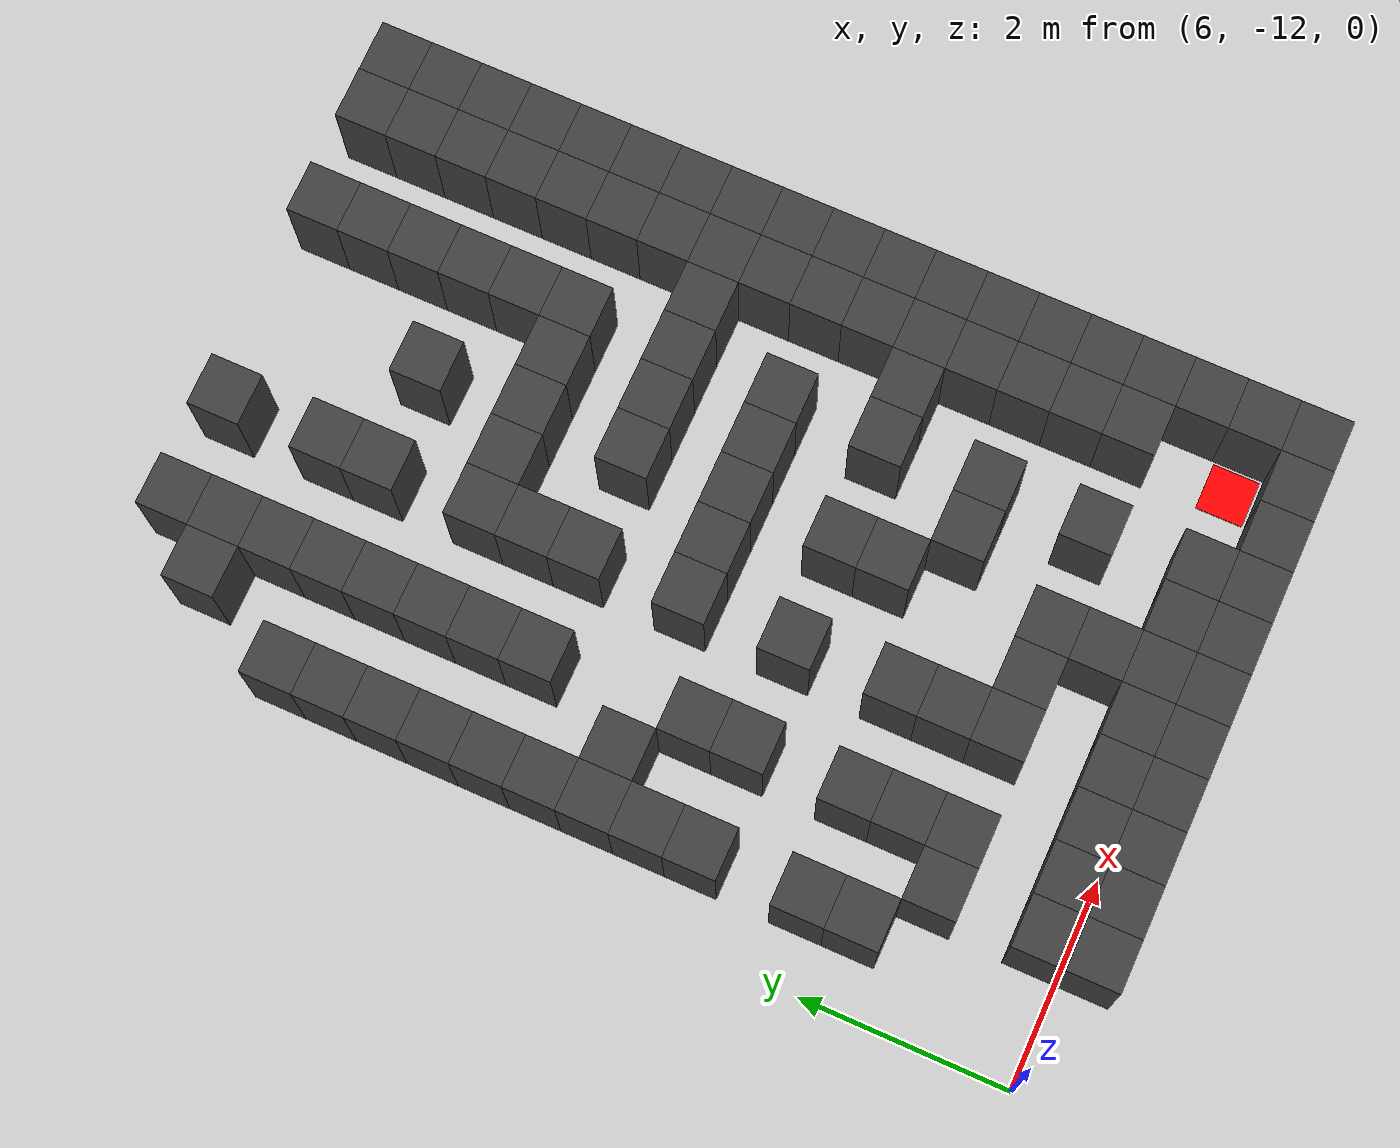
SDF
<sdf version="1.7">
 <world name="map_15168">
  <model name="ground_plane">
   <static>true</static>
   <link name="link">
    <collision name="collision">
     <geometry><plane><normal>0 0 1</normal><size>200 200</size></plane></geometry>
    </collision>
    <visual name="visual">
     <geometry><plane><normal>0 0 1</normal><size>200 200</size></plane></geometry>
     <material><ambient>0.8 0.8 0.8 1</ambient><diffuse>0.8 0.8 0.8 1</diffuse></material>
    </visual>
   </link>
  </model>
  <model name="maze_environment">
   <static>true</static>
   <link name="wall_743">
    <pose>7.750 -3.250 0.500 0 0 0</pose>
    <collision name="col"><geometry><box><size>0.5 0.5 1.0</size></box></geometry></collision>
    <visual name="vis">
     <geometry><box><size>0.5 0.5 1.0</size></box></geometry>
     <material><ambient>0.15 0.15 0.15 1</ambient><diffuse>0.25 0.25 0.25 1</diffuse></material>
    </visual>
   </link>
   <link name="wall_744">
    <pose>8.750 -3.250 0.500 0 0 0</pose>
    <collision name="col"><geometry><box><size>0.5 0.5 1.0</size></box></geometry></collision>
    <visual name="vis">
     <geometry><box><size>0.5 0.5 1.0</size></box></geometry>
     <material><ambient>0.15 0.15 0.15 1</ambient><diffuse>0.25 0.25 0.25 1</diffuse></material>
    </visual>
   </link>
   <link name="wall_745">
    <pose>10.750 -3.250 0.500 0 0 0</pose>
    <collision name="col"><geometry><box><size>0.5 0.5 1.0</size></box></geometry></collision>
    <visual name="vis">
     <geometry><box><size>0.5 0.5 1.0</size></box></geometry>
     <material><ambient>0.15 0.15 0.15 1</ambient><diffuse>0.25 0.25 0.25 1</diffuse></material>
    </visual>
   </link>
   <link name="wall_746">
    <pose>11.750 -3.250 0.500 0 0 0</pose>
    <collision name="col"><geometry><box><size>0.5 0.5 1.0</size></box></geometry></collision>
    <visual name="vis">
     <geometry><box><size>0.5 0.5 1.0</size></box></geometry>
     <material><ambient>0.15 0.15 0.15 1</ambient><diffuse>0.25 0.25 0.25 1</diffuse></material>
    </visual>
   </link>
   <link name="wall_747">
    <pose>12.250 -3.250 0.500 0 0 0</pose>
    <collision name="col"><geometry><box><size>0.5 0.5 1.0</size></box></geometry></collision>
    <visual name="vis">
     <geometry><box><size>0.5 0.5 1.0</size></box></geometry>
     <material><ambient>0.15 0.15 0.15 1</ambient><diffuse>0.25 0.25 0.25 1</diffuse></material>
    </visual>
   </link>
   <link name="wall_767">
    <pose>7.250 -3.750 0.500 0 0 0</pose>
    <collision name="col"><geometry><box><size>0.5 0.5 1.0</size></box></geometry></collision>
    <visual name="vis">
     <geometry><box><size>0.5 0.5 1.0</size></box></geometry>
     <material><ambient>0.15 0.15 0.15 1</ambient><diffuse>0.25 0.25 0.25 1</diffuse></material>
    </visual>
   </link>
   <link name="wall_768">
    <pose>7.750 -3.750 0.500 0 0 0</pose>
    <collision name="col"><geometry><box><size>0.5 0.5 1.0</size></box></geometry></collision>
    <visual name="vis">
     <geometry><box><size>0.5 0.5 1.0</size></box></geometry>
     <material><ambient>0.15 0.15 0.15 1</ambient><diffuse>0.25 0.25 0.25 1</diffuse></material>
    </visual>
   </link>
   <link name="wall_769">
    <pose>10.750 -3.750 0.500 0 0 0</pose>
    <collision name="col"><geometry><box><size>0.5 0.5 1.0</size></box></geometry></collision>
    <visual name="vis">
     <geometry><box><size>0.5 0.5 1.0</size></box></geometry>
     <material><ambient>0.15 0.15 0.15 1</ambient><diffuse>0.25 0.25 0.25 1</diffuse></material>
    </visual>
   </link>
   <link name="wall_770">
    <pose>11.750 -3.750 0.500 0 0 0</pose>
    <collision name="col"><geometry><box><size>0.5 0.5 1.0</size></box></geometry></collision>
    <visual name="vis">
     <geometry><box><size>0.5 0.5 1.0</size></box></geometry>
     <material><ambient>0.15 0.15 0.15 1</ambient><diffuse>0.25 0.25 0.25 1</diffuse></material>
    </visual>
   </link>
   <link name="wall_771">
    <pose>12.250 -3.750 0.500 0 0 0</pose>
    <collision name="col"><geometry><box><size>0.5 0.5 1.0</size></box></geometry></collision>
    <visual name="vis">
     <geometry><box><size>0.5 0.5 1.0</size></box></geometry>
     <material><ambient>0.15 0.15 0.15 1</ambient><diffuse>0.25 0.25 0.25 1</diffuse></material>
    </visual>
   </link>
   <link name="wall_780">
    <pose>7.750 -4.250 0.500 0 0 0</pose>
    <collision name="col"><geometry><box><size>0.5 0.5 1.0</size></box></geometry></collision>
    <visual name="vis">
     <geometry><box><size>0.5 0.5 1.0</size></box></geometry>
     <material><ambient>0.15 0.15 0.15 1</ambient><diffuse>0.25 0.25 0.25 1</diffuse></material>
    </visual>
   </link>
   <link name="wall_781">
    <pose>8.750 -4.250 0.500 0 0 0</pose>
    <collision name="col"><geometry><box><size>0.5 0.5 1.0</size></box></geometry></collision>
    <visual name="vis">
     <geometry><box><size>0.5 0.5 1.0</size></box></geometry>
     <material><ambient>0.15 0.15 0.15 1</ambient><diffuse>0.25 0.25 0.25 1</diffuse></material>
    </visual>
   </link>
   <link name="wall_782">
    <pose>10.750 -4.250 0.500 0 0 0</pose>
    <collision name="col"><geometry><box><size>0.5 0.5 1.0</size></box></geometry></collision>
    <visual name="vis">
     <geometry><box><size>0.5 0.5 1.0</size></box></geometry>
     <material><ambient>0.15 0.15 0.15 1</ambient><diffuse>0.25 0.25 0.25 1</diffuse></material>
    </visual>
   </link>
   <link name="wall_783">
    <pose>11.750 -4.250 0.500 0 0 0</pose>
    <collision name="col"><geometry><box><size>0.5 0.5 1.0</size></box></geometry></collision>
    <visual name="vis">
     <geometry><box><size>0.5 0.5 1.0</size></box></geometry>
     <material><ambient>0.15 0.15 0.15 1</ambient><diffuse>0.25 0.25 0.25 1</diffuse></material>
    </visual>
   </link>
   <link name="wall_784">
    <pose>12.250 -4.250 0.500 0 0 0</pose>
    <collision name="col"><geometry><box><size>0.5 0.5 1.0</size></box></geometry></collision>
    <visual name="vis">
     <geometry><box><size>0.5 0.5 1.0</size></box></geometry>
     <material><ambient>0.15 0.15 0.15 1</ambient><diffuse>0.25 0.25 0.25 1</diffuse></material>
    </visual>
   </link>
   <link name="wall_809">
    <pose>6.750 -4.750 0.500 0 0 0</pose>
    <collision name="col"><geometry><box><size>0.5 0.5 1.0</size></box></geometry></collision>
    <visual name="vis">
     <geometry><box><size>0.5 0.5 1.0</size></box></geometry>
     <material><ambient>0.15 0.15 0.15 1</ambient><diffuse>0.25 0.25 0.25 1</diffuse></material>
    </visual>
   </link>
   <link name="wall_810">
    <pose>7.750 -4.750 0.500 0 0 0</pose>
    <collision name="col"><geometry><box><size>0.5 0.5 1.0</size></box></geometry></collision>
    <visual name="vis">
     <geometry><box><size>0.5 0.5 1.0</size></box></geometry>
     <material><ambient>0.15 0.15 0.15 1</ambient><diffuse>0.25 0.25 0.25 1</diffuse></material>
    </visual>
   </link>
   <link name="wall_811">
    <pose>8.750 -4.750 0.500 0 0 0</pose>
    <collision name="col"><geometry><box><size>0.5 0.5 1.0</size></box></geometry></collision>
    <visual name="vis">
     <geometry><box><size>0.5 0.5 1.0</size></box></geometry>
     <material><ambient>0.15 0.15 0.15 1</ambient><diffuse>0.25 0.25 0.25 1</diffuse></material>
    </visual>
   </link>
   <link name="wall_812">
    <pose>9.750 -4.750 0.500 0 0 0</pose>
    <collision name="col"><geometry><box><size>0.5 0.5 1.0</size></box></geometry></collision>
    <visual name="vis">
     <geometry><box><size>0.5 0.5 1.0</size></box></geometry>
     <material><ambient>0.15 0.15 0.15 1</ambient><diffuse>0.25 0.25 0.25 1</diffuse></material>
    </visual>
   </link>
   <link name="wall_813">
    <pose>10.750 -4.750 0.500 0 0 0</pose>
    <collision name="col"><geometry><box><size>0.5 0.5 1.0</size></box></geometry></collision>
    <visual name="vis">
     <geometry><box><size>0.5 0.5 1.0</size></box></geometry>
     <material><ambient>0.15 0.15 0.15 1</ambient><diffuse>0.25 0.25 0.25 1</diffuse></material>
    </visual>
   </link>
   <link name="wall_814">
    <pose>11.750 -4.750 0.500 0 0 0</pose>
    <collision name="col"><geometry><box><size>0.5 0.5 1.0</size></box></geometry></collision>
    <visual name="vis">
     <geometry><box><size>0.5 0.5 1.0</size></box></geometry>
     <material><ambient>0.15 0.15 0.15 1</ambient><diffuse>0.25 0.25 0.25 1</diffuse></material>
    </visual>
   </link>
   <link name="wall_815">
    <pose>12.250 -4.750 0.500 0 0 0</pose>
    <collision name="col"><geometry><box><size>0.5 0.5 1.0</size></box></geometry></collision>
    <visual name="vis">
     <geometry><box><size>0.5 0.5 1.0</size></box></geometry>
     <material><ambient>0.15 0.15 0.15 1</ambient><diffuse>0.25 0.25 0.25 1</diffuse></material>
    </visual>
   </link>
   <link name="wall_824">
    <pose>6.750 -5.250 0.500 0 0 0</pose>
    <collision name="col"><geometry><box><size>0.5 0.5 1.0</size></box></geometry></collision>
    <visual name="vis">
     <geometry><box><size>0.5 0.5 1.0</size></box></geometry>
     <material><ambient>0.15 0.15 0.15 1</ambient><diffuse>0.25 0.25 0.25 1</diffuse></material>
    </visual>
   </link>
   <link name="wall_825">
    <pose>7.750 -5.250 0.500 0 0 0</pose>
    <collision name="col"><geometry><box><size>0.5 0.5 1.0</size></box></geometry></collision>
    <visual name="vis">
     <geometry><box><size>0.5 0.5 1.0</size></box></geometry>
     <material><ambient>0.15 0.15 0.15 1</ambient><diffuse>0.25 0.25 0.25 1</diffuse></material>
    </visual>
   </link>
   <link name="wall_826">
    <pose>10.750 -5.250 0.500 0 0 0</pose>
    <collision name="col"><geometry><box><size>0.5 0.5 1.0</size></box></geometry></collision>
    <visual name="vis">
     <geometry><box><size>0.5 0.5 1.0</size></box></geometry>
     <material><ambient>0.15 0.15 0.15 1</ambient><diffuse>0.25 0.25 0.25 1</diffuse></material>
    </visual>
   </link>
   <link name="wall_827">
    <pose>11.750 -5.250 0.500 0 0 0</pose>
    <collision name="col"><geometry><box><size>0.5 0.5 1.0</size></box></geometry></collision>
    <visual name="vis">
     <geometry><box><size>0.5 0.5 1.0</size></box></geometry>
     <material><ambient>0.15 0.15 0.15 1</ambient><diffuse>0.25 0.25 0.25 1</diffuse></material>
    </visual>
   </link>
   <link name="wall_828">
    <pose>12.250 -5.250 0.500 0 0 0</pose>
    <collision name="col"><geometry><box><size>0.5 0.5 1.0</size></box></geometry></collision>
    <visual name="vis">
     <geometry><box><size>0.5 0.5 1.0</size></box></geometry>
     <material><ambient>0.15 0.15 0.15 1</ambient><diffuse>0.25 0.25 0.25 1</diffuse></material>
    </visual>
   </link>
   <link name="wall_855">
    <pose>6.750 -5.750 0.500 0 0 0</pose>
    <collision name="col"><geometry><box><size>0.5 0.5 1.0</size></box></geometry></collision>
    <visual name="vis">
     <geometry><box><size>0.5 0.5 1.0</size></box></geometry>
     <material><ambient>0.15 0.15 0.15 1</ambient><diffuse>0.25 0.25 0.25 1</diffuse></material>
    </visual>
   </link>
   <link name="wall_856">
    <pose>7.750 -5.750 0.500 0 0 0</pose>
    <collision name="col"><geometry><box><size>0.5 0.5 1.0</size></box></geometry></collision>
    <visual name="vis">
     <geometry><box><size>0.5 0.5 1.0</size></box></geometry>
     <material><ambient>0.15 0.15 0.15 1</ambient><diffuse>0.25 0.25 0.25 1</diffuse></material>
    </visual>
   </link>
   <link name="wall_857">
    <pose>8.750 -5.750 0.500 0 0 0</pose>
    <collision name="col"><geometry><box><size>0.5 0.5 1.0</size></box></geometry></collision>
    <visual name="vis">
     <geometry><box><size>0.5 0.5 1.0</size></box></geometry>
     <material><ambient>0.15 0.15 0.15 1</ambient><diffuse>0.25 0.25 0.25 1</diffuse></material>
    </visual>
   </link>
   <link name="wall_858">
    <pose>9.250 -5.750 0.500 0 0 0</pose>
    <collision name="col"><geometry><box><size>0.5 0.5 1.0</size></box></geometry></collision>
    <visual name="vis">
     <geometry><box><size>0.5 0.5 1.0</size></box></geometry>
     <material><ambient>0.15 0.15 0.15 1</ambient><diffuse>0.25 0.25 0.25 1</diffuse></material>
    </visual>
   </link>
   <link name="wall_859">
    <pose>9.750 -5.750 0.500 0 0 0</pose>
    <collision name="col"><geometry><box><size>0.5 0.5 1.0</size></box></geometry></collision>
    <visual name="vis">
     <geometry><box><size>0.5 0.5 1.0</size></box></geometry>
     <material><ambient>0.15 0.15 0.15 1</ambient><diffuse>0.25 0.25 0.25 1</diffuse></material>
    </visual>
   </link>
   <link name="wall_860">
    <pose>10.250 -5.750 0.500 0 0 0</pose>
    <collision name="col"><geometry><box><size>0.5 0.5 1.0</size></box></geometry></collision>
    <visual name="vis">
     <geometry><box><size>0.5 0.5 1.0</size></box></geometry>
     <material><ambient>0.15 0.15 0.15 1</ambient><diffuse>0.25 0.25 0.25 1</diffuse></material>
    </visual>
   </link>
   <link name="wall_861">
    <pose>10.750 -5.750 0.500 0 0 0</pose>
    <collision name="col"><geometry><box><size>0.5 0.5 1.0</size></box></geometry></collision>
    <visual name="vis">
     <geometry><box><size>0.5 0.5 1.0</size></box></geometry>
     <material><ambient>0.15 0.15 0.15 1</ambient><diffuse>0.25 0.25 0.25 1</diffuse></material>
    </visual>
   </link>
   <link name="wall_862">
    <pose>11.750 -5.750 0.500 0 0 0</pose>
    <collision name="col"><geometry><box><size>0.5 0.5 1.0</size></box></geometry></collision>
    <visual name="vis">
     <geometry><box><size>0.5 0.5 1.0</size></box></geometry>
     <material><ambient>0.15 0.15 0.15 1</ambient><diffuse>0.25 0.25 0.25 1</diffuse></material>
    </visual>
   </link>
   <link name="wall_863">
    <pose>12.250 -5.750 0.500 0 0 0</pose>
    <collision name="col"><geometry><box><size>0.5 0.5 1.0</size></box></geometry></collision>
    <visual name="vis">
     <geometry><box><size>0.5 0.5 1.0</size></box></geometry>
     <material><ambient>0.15 0.15 0.15 1</ambient><diffuse>0.25 0.25 0.25 1</diffuse></material>
    </visual>
   </link>
   <link name="wall_869">
    <pose>6.750 -6.250 0.500 0 0 0</pose>
    <collision name="col"><geometry><box><size>0.5 0.5 1.0</size></box></geometry></collision>
    <visual name="vis">
     <geometry><box><size>0.5 0.5 1.0</size></box></geometry>
     <material><ambient>0.15 0.15 0.15 1</ambient><diffuse>0.25 0.25 0.25 1</diffuse></material>
    </visual>
   </link>
   <link name="wall_870">
    <pose>7.750 -6.250 0.500 0 0 0</pose>
    <collision name="col"><geometry><box><size>0.5 0.5 1.0</size></box></geometry></collision>
    <visual name="vis">
     <geometry><box><size>0.5 0.5 1.0</size></box></geometry>
     <material><ambient>0.15 0.15 0.15 1</ambient><diffuse>0.25 0.25 0.25 1</diffuse></material>
    </visual>
   </link>
   <link name="wall_871">
    <pose>8.750 -6.250 0.500 0 0 0</pose>
    <collision name="col"><geometry><box><size>0.5 0.5 1.0</size></box></geometry></collision>
    <visual name="vis">
     <geometry><box><size>0.5 0.5 1.0</size></box></geometry>
     <material><ambient>0.15 0.15 0.15 1</ambient><diffuse>0.25 0.25 0.25 1</diffuse></material>
    </visual>
   </link>
   <link name="wall_872">
    <pose>11.750 -6.250 0.500 0 0 0</pose>
    <collision name="col"><geometry><box><size>0.5 0.5 1.0</size></box></geometry></collision>
    <visual name="vis">
     <geometry><box><size>0.5 0.5 1.0</size></box></geometry>
     <material><ambient>0.15 0.15 0.15 1</ambient><diffuse>0.25 0.25 0.25 1</diffuse></material>
    </visual>
   </link>
   <link name="wall_873">
    <pose>12.250 -6.250 0.500 0 0 0</pose>
    <collision name="col"><geometry><box><size>0.5 0.5 1.0</size></box></geometry></collision>
    <visual name="vis">
     <geometry><box><size>0.5 0.5 1.0</size></box></geometry>
     <material><ambient>0.15 0.15 0.15 1</ambient><diffuse>0.25 0.25 0.25 1</diffuse></material>
    </visual>
   </link>
   <link name="wall_903">
    <pose>6.750 -6.750 0.500 0 0 0</pose>
    <collision name="col"><geometry><box><size>0.5 0.5 1.0</size></box></geometry></collision>
    <visual name="vis">
     <geometry><box><size>0.5 0.5 1.0</size></box></geometry>
     <material><ambient>0.15 0.15 0.15 1</ambient><diffuse>0.25 0.25 0.25 1</diffuse></material>
    </visual>
   </link>
   <link name="wall_904">
    <pose>7.750 -6.750 0.500 0 0 0</pose>
    <collision name="col"><geometry><box><size>0.5 0.5 1.0</size></box></geometry></collision>
    <visual name="vis">
     <geometry><box><size>0.5 0.5 1.0</size></box></geometry>
     <material><ambient>0.15 0.15 0.15 1</ambient><diffuse>0.25 0.25 0.25 1</diffuse></material>
    </visual>
   </link>
   <link name="wall_905">
    <pose>8.750 -6.750 0.500 0 0 0</pose>
    <collision name="col"><geometry><box><size>0.5 0.5 1.0</size></box></geometry></collision>
    <visual name="vis">
     <geometry><box><size>0.5 0.5 1.0</size></box></geometry>
     <material><ambient>0.15 0.15 0.15 1</ambient><diffuse>0.25 0.25 0.25 1</diffuse></material>
    </visual>
   </link>
   <link name="wall_906">
    <pose>9.750 -6.750 0.500 0 0 0</pose>
    <collision name="col"><geometry><box><size>0.5 0.5 1.0</size></box></geometry></collision>
    <visual name="vis">
     <geometry><box><size>0.5 0.5 1.0</size></box></geometry>
     <material><ambient>0.15 0.15 0.15 1</ambient><diffuse>0.25 0.25 0.25 1</diffuse></material>
    </visual>
   </link>
   <link name="wall_907">
    <pose>10.250 -6.750 0.500 0 0 0</pose>
    <collision name="col"><geometry><box><size>0.5 0.5 1.0</size></box></geometry></collision>
    <visual name="vis">
     <geometry><box><size>0.5 0.5 1.0</size></box></geometry>
     <material><ambient>0.15 0.15 0.15 1</ambient><diffuse>0.25 0.25 0.25 1</diffuse></material>
    </visual>
   </link>
   <link name="wall_908">
    <pose>10.750 -6.750 0.500 0 0 0</pose>
    <collision name="col"><geometry><box><size>0.5 0.5 1.0</size></box></geometry></collision>
    <visual name="vis">
     <geometry><box><size>0.5 0.5 1.0</size></box></geometry>
     <material><ambient>0.15 0.15 0.15 1</ambient><diffuse>0.25 0.25 0.25 1</diffuse></material>
    </visual>
   </link>
   <link name="wall_909">
    <pose>11.250 -6.750 0.500 0 0 0</pose>
    <collision name="col"><geometry><box><size>0.5 0.5 1.0</size></box></geometry></collision>
    <visual name="vis">
     <geometry><box><size>0.5 0.5 1.0</size></box></geometry>
     <material><ambient>0.15 0.15 0.15 1</ambient><diffuse>0.25 0.25 0.25 1</diffuse></material>
    </visual>
   </link>
   <link name="wall_910">
    <pose>11.750 -6.750 0.500 0 0 0</pose>
    <collision name="col"><geometry><box><size>0.5 0.5 1.0</size></box></geometry></collision>
    <visual name="vis">
     <geometry><box><size>0.5 0.5 1.0</size></box></geometry>
     <material><ambient>0.15 0.15 0.15 1</ambient><diffuse>0.25 0.25 0.25 1</diffuse></material>
    </visual>
   </link>
   <link name="wall_911">
    <pose>12.250 -6.750 0.500 0 0 0</pose>
    <collision name="col"><geometry><box><size>0.5 0.5 1.0</size></box></geometry></collision>
    <visual name="vis">
     <geometry><box><size>0.5 0.5 1.0</size></box></geometry>
     <material><ambient>0.15 0.15 0.15 1</ambient><diffuse>0.25 0.25 0.25 1</diffuse></material>
    </visual>
   </link>
   <link name="wall_920">
    <pose>6.750 -7.250 0.500 0 0 0</pose>
    <collision name="col"><geometry><box><size>0.5 0.5 1.0</size></box></geometry></collision>
    <visual name="vis">
     <geometry><box><size>0.5 0.5 1.0</size></box></geometry>
     <material><ambient>0.15 0.15 0.15 1</ambient><diffuse>0.25 0.25 0.25 1</diffuse></material>
    </visual>
   </link>
   <link name="wall_921">
    <pose>11.750 -7.250 0.500 0 0 0</pose>
    <collision name="col"><geometry><box><size>0.5 0.5 1.0</size></box></geometry></collision>
    <visual name="vis">
     <geometry><box><size>0.5 0.5 1.0</size></box></geometry>
     <material><ambient>0.15 0.15 0.15 1</ambient><diffuse>0.25 0.25 0.25 1</diffuse></material>
    </visual>
   </link>
   <link name="wall_922">
    <pose>12.250 -7.250 0.500 0 0 0</pose>
    <collision name="col"><geometry><box><size>0.5 0.5 1.0</size></box></geometry></collision>
    <visual name="vis">
     <geometry><box><size>0.5 0.5 1.0</size></box></geometry>
     <material><ambient>0.15 0.15 0.15 1</ambient><diffuse>0.25 0.25 0.25 1</diffuse></material>
    </visual>
   </link>
   <link name="wall_946">
    <pose>6.750 -7.750 0.500 0 0 0</pose>
    <collision name="col"><geometry><box><size>0.5 0.5 1.0</size></box></geometry></collision>
    <visual name="vis">
     <geometry><box><size>0.5 0.5 1.0</size></box></geometry>
     <material><ambient>0.15 0.15 0.15 1</ambient><diffuse>0.25 0.25 0.25 1</diffuse></material>
    </visual>
   </link>
   <link name="wall_947">
    <pose>7.250 -7.750 0.500 0 0 0</pose>
    <collision name="col"><geometry><box><size>0.5 0.5 1.0</size></box></geometry></collision>
    <visual name="vis">
     <geometry><box><size>0.5 0.5 1.0</size></box></geometry>
     <material><ambient>0.15 0.15 0.15 1</ambient><diffuse>0.25 0.25 0.25 1</diffuse></material>
    </visual>
   </link>
   <link name="wall_948">
    <pose>8.750 -7.750 0.500 0 0 0</pose>
    <collision name="col"><geometry><box><size>0.5 0.5 1.0</size></box></geometry></collision>
    <visual name="vis">
     <geometry><box><size>0.5 0.5 1.0</size></box></geometry>
     <material><ambient>0.15 0.15 0.15 1</ambient><diffuse>0.25 0.25 0.25 1</diffuse></material>
    </visual>
   </link>
   <link name="wall_949">
    <pose>9.250 -7.750 0.500 0 0 0</pose>
    <collision name="col"><geometry><box><size>0.5 0.5 1.0</size></box></geometry></collision>
    <visual name="vis">
     <geometry><box><size>0.5 0.5 1.0</size></box></geometry>
     <material><ambient>0.15 0.15 0.15 1</ambient><diffuse>0.25 0.25 0.25 1</diffuse></material>
    </visual>
   </link>
   <link name="wall_950">
    <pose>9.750 -7.750 0.500 0 0 0</pose>
    <collision name="col"><geometry><box><size>0.5 0.5 1.0</size></box></geometry></collision>
    <visual name="vis">
     <geometry><box><size>0.5 0.5 1.0</size></box></geometry>
     <material><ambient>0.15 0.15 0.15 1</ambient><diffuse>0.25 0.25 0.25 1</diffuse></material>
    </visual>
   </link>
   <link name="wall_951">
    <pose>10.250 -7.750 0.500 0 0 0</pose>
    <collision name="col"><geometry><box><size>0.5 0.5 1.0</size></box></geometry></collision>
    <visual name="vis">
     <geometry><box><size>0.5 0.5 1.0</size></box></geometry>
     <material><ambient>0.15 0.15 0.15 1</ambient><diffuse>0.25 0.25 0.25 1</diffuse></material>
    </visual>
   </link>
   <link name="wall_952">
    <pose>10.750 -7.750 0.500 0 0 0</pose>
    <collision name="col"><geometry><box><size>0.5 0.5 1.0</size></box></geometry></collision>
    <visual name="vis">
     <geometry><box><size>0.5 0.5 1.0</size></box></geometry>
     <material><ambient>0.15 0.15 0.15 1</ambient><diffuse>0.25 0.25 0.25 1</diffuse></material>
    </visual>
   </link>
   <link name="wall_953">
    <pose>11.750 -7.750 0.500 0 0 0</pose>
    <collision name="col"><geometry><box><size>0.5 0.5 1.0</size></box></geometry></collision>
    <visual name="vis">
     <geometry><box><size>0.5 0.5 1.0</size></box></geometry>
     <material><ambient>0.15 0.15 0.15 1</ambient><diffuse>0.25 0.25 0.25 1</diffuse></material>
    </visual>
   </link>
   <link name="wall_954">
    <pose>12.250 -7.750 0.500 0 0 0</pose>
    <collision name="col"><geometry><box><size>0.5 0.5 1.0</size></box></geometry></collision>
    <visual name="vis">
     <geometry><box><size>0.5 0.5 1.0</size></box></geometry>
     <material><ambient>0.15 0.15 0.15 1</ambient><diffuse>0.25 0.25 0.25 1</diffuse></material>
    </visual>
   </link>
   <link name="wall_964">
    <pose>6.750 -8.250 0.500 0 0 0</pose>
    <collision name="col"><geometry><box><size>0.5 0.5 1.0</size></box></geometry></collision>
    <visual name="vis">
     <geometry><box><size>0.5 0.5 1.0</size></box></geometry>
     <material><ambient>0.15 0.15 0.15 1</ambient><diffuse>0.25 0.25 0.25 1</diffuse></material>
    </visual>
   </link>
   <link name="wall_965">
    <pose>7.750 -8.250 0.500 0 0 0</pose>
    <collision name="col"><geometry><box><size>0.5 0.5 1.0</size></box></geometry></collision>
    <visual name="vis">
     <geometry><box><size>0.5 0.5 1.0</size></box></geometry>
     <material><ambient>0.15 0.15 0.15 1</ambient><diffuse>0.25 0.25 0.25 1</diffuse></material>
    </visual>
   </link>
   <link name="wall_966">
    <pose>11.750 -8.250 0.500 0 0 0</pose>
    <collision name="col"><geometry><box><size>0.5 0.5 1.0</size></box></geometry></collision>
    <visual name="vis">
     <geometry><box><size>0.5 0.5 1.0</size></box></geometry>
     <material><ambient>0.15 0.15 0.15 1</ambient><diffuse>0.25 0.25 0.25 1</diffuse></material>
    </visual>
   </link>
   <link name="wall_967">
    <pose>12.250 -8.250 0.500 0 0 0</pose>
    <collision name="col"><geometry><box><size>0.5 0.5 1.0</size></box></geometry></collision>
    <visual name="vis">
     <geometry><box><size>0.5 0.5 1.0</size></box></geometry>
     <material><ambient>0.15 0.15 0.15 1</ambient><diffuse>0.25 0.25 0.25 1</diffuse></material>
    </visual>
   </link>
   <link name="wall_996">
    <pose>6.750 -8.750 0.500 0 0 0</pose>
    <collision name="col"><geometry><box><size>0.5 0.5 1.0</size></box></geometry></collision>
    <visual name="vis">
     <geometry><box><size>0.5 0.5 1.0</size></box></geometry>
     <material><ambient>0.15 0.15 0.15 1</ambient><diffuse>0.25 0.25 0.25 1</diffuse></material>
    </visual>
   </link>
   <link name="wall_997">
    <pose>7.750 -8.750 0.500 0 0 0</pose>
    <collision name="col"><geometry><box><size>0.5 0.5 1.0</size></box></geometry></collision>
    <visual name="vis">
     <geometry><box><size>0.5 0.5 1.0</size></box></geometry>
     <material><ambient>0.15 0.15 0.15 1</ambient><diffuse>0.25 0.25 0.25 1</diffuse></material>
    </visual>
   </link>
   <link name="wall_998">
    <pose>8.750 -8.750 0.500 0 0 0</pose>
    <collision name="col"><geometry><box><size>0.5 0.5 1.0</size></box></geometry></collision>
    <visual name="vis">
     <geometry><box><size>0.5 0.5 1.0</size></box></geometry>
     <material><ambient>0.15 0.15 0.15 1</ambient><diffuse>0.25 0.25 0.25 1</diffuse></material>
    </visual>
   </link>
   <link name="wall_999">
    <pose>9.750 -8.750 0.500 0 0 0</pose>
    <collision name="col"><geometry><box><size>0.5 0.5 1.0</size></box></geometry></collision>
    <visual name="vis">
     <geometry><box><size>0.5 0.5 1.0</size></box></geometry>
     <material><ambient>0.15 0.15 0.15 1</ambient><diffuse>0.25 0.25 0.25 1</diffuse></material>
    </visual>
   </link>
   <link name="wall_1000">
    <pose>10.750 -8.750 0.500 0 0 0</pose>
    <collision name="col"><geometry><box><size>0.5 0.5 1.0</size></box></geometry></collision>
    <visual name="vis">
     <geometry><box><size>0.5 0.5 1.0</size></box></geometry>
     <material><ambient>0.15 0.15 0.15 1</ambient><diffuse>0.25 0.25 0.25 1</diffuse></material>
    </visual>
   </link>
   <link name="wall_1001">
    <pose>11.250 -8.750 0.500 0 0 0</pose>
    <collision name="col"><geometry><box><size>0.5 0.5 1.0</size></box></geometry></collision>
    <visual name="vis">
     <geometry><box><size>0.5 0.5 1.0</size></box></geometry>
     <material><ambient>0.15 0.15 0.15 1</ambient><diffuse>0.25 0.25 0.25 1</diffuse></material>
    </visual>
   </link>
   <link name="wall_1002">
    <pose>11.750 -8.750 0.500 0 0 0</pose>
    <collision name="col"><geometry><box><size>0.5 0.5 1.0</size></box></geometry></collision>
    <visual name="vis">
     <geometry><box><size>0.5 0.5 1.0</size></box></geometry>
     <material><ambient>0.15 0.15 0.15 1</ambient><diffuse>0.25 0.25 0.25 1</diffuse></material>
    </visual>
   </link>
   <link name="wall_1003">
    <pose>12.250 -8.750 0.500 0 0 0</pose>
    <collision name="col"><geometry><box><size>0.5 0.5 1.0</size></box></geometry></collision>
    <visual name="vis">
     <geometry><box><size>0.5 0.5 1.0</size></box></geometry>
     <material><ambient>0.15 0.15 0.15 1</ambient><diffuse>0.25 0.25 0.25 1</diffuse></material>
    </visual>
   </link>
   <link name="wall_1011">
    <pose>9.750 -9.250 0.500 0 0 0</pose>
    <collision name="col"><geometry><box><size>0.5 0.5 1.0</size></box></geometry></collision>
    <visual name="vis">
     <geometry><box><size>0.5 0.5 1.0</size></box></geometry>
     <material><ambient>0.15 0.15 0.15 1</ambient><diffuse>0.25 0.25 0.25 1</diffuse></material>
    </visual>
   </link>
   <link name="wall_1012">
    <pose>11.750 -9.250 0.500 0 0 0</pose>
    <collision name="col"><geometry><box><size>0.5 0.5 1.0</size></box></geometry></collision>
    <visual name="vis">
     <geometry><box><size>0.5 0.5 1.0</size></box></geometry>
     <material><ambient>0.15 0.15 0.15 1</ambient><diffuse>0.25 0.25 0.25 1</diffuse></material>
    </visual>
   </link>
   <link name="wall_1013">
    <pose>12.250 -9.250 0.500 0 0 0</pose>
    <collision name="col"><geometry><box><size>0.5 0.5 1.0</size></box></geometry></collision>
    <visual name="vis">
     <geometry><box><size>0.5 0.5 1.0</size></box></geometry>
     <material><ambient>0.15 0.15 0.15 1</ambient><diffuse>0.25 0.25 0.25 1</diffuse></material>
    </visual>
   </link>
   <link name="wall_1042">
    <pose>6.750 -9.750 0.500 0 0 0</pose>
    <collision name="col"><geometry><box><size>0.5 0.5 1.0</size></box></geometry></collision>
    <visual name="vis">
     <geometry><box><size>0.5 0.5 1.0</size></box></geometry>
     <material><ambient>0.15 0.15 0.15 1</ambient><diffuse>0.25 0.25 0.25 1</diffuse></material>
    </visual>
   </link>
   <link name="wall_1043">
    <pose>7.750 -9.750 0.500 0 0 0</pose>
    <collision name="col"><geometry><box><size>0.5 0.5 1.0</size></box></geometry></collision>
    <visual name="vis">
     <geometry><box><size>0.5 0.5 1.0</size></box></geometry>
     <material><ambient>0.15 0.15 0.15 1</ambient><diffuse>0.25 0.25 0.25 1</diffuse></material>
    </visual>
   </link>
   <link name="wall_1044">
    <pose>8.750 -9.750 0.500 0 0 0</pose>
    <collision name="col"><geometry><box><size>0.5 0.5 1.0</size></box></geometry></collision>
    <visual name="vis">
     <geometry><box><size>0.5 0.5 1.0</size></box></geometry>
     <material><ambient>0.15 0.15 0.15 1</ambient><diffuse>0.25 0.25 0.25 1</diffuse></material>
    </visual>
   </link>
   <link name="wall_1045">
    <pose>10.250 -9.750 0.500 0 0 0</pose>
    <collision name="col"><geometry><box><size>0.5 0.5 1.0</size></box></geometry></collision>
    <visual name="vis">
     <geometry><box><size>0.5 0.5 1.0</size></box></geometry>
     <material><ambient>0.15 0.15 0.15 1</ambient><diffuse>0.25 0.25 0.25 1</diffuse></material>
    </visual>
   </link>
   <link name="wall_1046">
    <pose>10.750 -9.750 0.500 0 0 0</pose>
    <collision name="col"><geometry><box><size>0.5 0.5 1.0</size></box></geometry></collision>
    <visual name="vis">
     <geometry><box><size>0.5 0.5 1.0</size></box></geometry>
     <material><ambient>0.15 0.15 0.15 1</ambient><diffuse>0.25 0.25 0.25 1</diffuse></material>
    </visual>
   </link>
   <link name="wall_1047">
    <pose>11.750 -9.750 0.500 0 0 0</pose>
    <collision name="col"><geometry><box><size>0.5 0.5 1.0</size></box></geometry></collision>
    <visual name="vis">
     <geometry><box><size>0.5 0.5 1.0</size></box></geometry>
     <material><ambient>0.15 0.15 0.15 1</ambient><diffuse>0.25 0.25 0.25 1</diffuse></material>
    </visual>
   </link>
   <link name="wall_1048">
    <pose>12.250 -9.750 0.500 0 0 0</pose>
    <collision name="col"><geometry><box><size>0.5 0.5 1.0</size></box></geometry></collision>
    <visual name="vis">
     <geometry><box><size>0.5 0.5 1.0</size></box></geometry>
     <material><ambient>0.15 0.15 0.15 1</ambient><diffuse>0.25 0.25 0.25 1</diffuse></material>
    </visual>
   </link>
   <link name="wall_1057">
    <pose>6.750 -10.250 0.500 0 0 0</pose>
    <collision name="col"><geometry><box><size>0.5 0.5 1.0</size></box></geometry></collision>
    <visual name="vis">
     <geometry><box><size>0.5 0.5 1.0</size></box></geometry>
     <material><ambient>0.15 0.15 0.15 1</ambient><diffuse>0.25 0.25 0.25 1</diffuse></material>
    </visual>
   </link>
   <link name="wall_1058">
    <pose>7.750 -10.250 0.500 0 0 0</pose>
    <collision name="col"><geometry><box><size>0.5 0.5 1.0</size></box></geometry></collision>
    <visual name="vis">
     <geometry><box><size>0.5 0.5 1.0</size></box></geometry>
     <material><ambient>0.15 0.15 0.15 1</ambient><diffuse>0.25 0.25 0.25 1</diffuse></material>
    </visual>
   </link>
   <link name="wall_1059">
    <pose>8.750 -10.250 0.500 0 0 0</pose>
    <collision name="col"><geometry><box><size>0.5 0.5 1.0</size></box></geometry></collision>
    <visual name="vis">
     <geometry><box><size>0.5 0.5 1.0</size></box></geometry>
     <material><ambient>0.15 0.15 0.15 1</ambient><diffuse>0.25 0.25 0.25 1</diffuse></material>
    </visual>
   </link>
   <link name="wall_1060">
    <pose>11.750 -10.250 0.500 0 0 0</pose>
    <collision name="col"><geometry><box><size>0.5 0.5 1.0</size></box></geometry></collision>
    <visual name="vis">
     <geometry><box><size>0.5 0.5 1.0</size></box></geometry>
     <material><ambient>0.15 0.15 0.15 1</ambient><diffuse>0.25 0.25 0.25 1</diffuse></material>
    </visual>
   </link>
   <link name="wall_1061">
    <pose>12.250 -10.250 0.500 0 0 0</pose>
    <collision name="col"><geometry><box><size>0.5 0.5 1.0</size></box></geometry></collision>
    <visual name="vis">
     <geometry><box><size>0.5 0.5 1.0</size></box></geometry>
     <material><ambient>0.15 0.15 0.15 1</ambient><diffuse>0.25 0.25 0.25 1</diffuse></material>
    </visual>
   </link>
   <link name="wall_1090">
    <pose>7.250 -10.750 0.500 0 0 0</pose>
    <collision name="col"><geometry><box><size>0.5 0.5 1.0</size></box></geometry></collision>
    <visual name="vis">
     <geometry><box><size>0.5 0.5 1.0</size></box></geometry>
     <material><ambient>0.15 0.15 0.15 1</ambient><diffuse>0.25 0.25 0.25 1</diffuse></material>
    </visual>
   </link>
   <link name="wall_1091">
    <pose>7.750 -10.750 0.500 0 0 0</pose>
    <collision name="col"><geometry><box><size>0.5 0.5 1.0</size></box></geometry></collision>
    <visual name="vis">
     <geometry><box><size>0.5 0.5 1.0</size></box></geometry>
     <material><ambient>0.15 0.15 0.15 1</ambient><diffuse>0.25 0.25 0.25 1</diffuse></material>
    </visual>
   </link>
   <link name="wall_1092">
    <pose>8.750 -10.750 0.500 0 0 0</pose>
    <collision name="col"><geometry><box><size>0.5 0.5 1.0</size></box></geometry></collision>
    <visual name="vis">
     <geometry><box><size>0.5 0.5 1.0</size></box></geometry>
     <material><ambient>0.15 0.15 0.15 1</ambient><diffuse>0.25 0.25 0.25 1</diffuse></material>
    </visual>
   </link>
   <link name="wall_1093">
    <pose>9.250 -10.750 0.500 0 0 0</pose>
    <collision name="col"><geometry><box><size>0.5 0.5 1.0</size></box></geometry></collision>
    <visual name="vis">
     <geometry><box><size>0.5 0.5 1.0</size></box></geometry>
     <material><ambient>0.15 0.15 0.15 1</ambient><diffuse>0.25 0.25 0.25 1</diffuse></material>
    </visual>
   </link>
   <link name="wall_1094">
    <pose>9.750 -10.750 0.500 0 0 0</pose>
    <collision name="col"><geometry><box><size>0.5 0.5 1.0</size></box></geometry></collision>
    <visual name="vis">
     <geometry><box><size>0.5 0.5 1.0</size></box></geometry>
     <material><ambient>0.15 0.15 0.15 1</ambient><diffuse>0.25 0.25 0.25 1</diffuse></material>
    </visual>
   </link>
   <link name="wall_1095">
    <pose>10.750 -10.750 0.500 0 0 0</pose>
    <collision name="col"><geometry><box><size>0.5 0.5 1.0</size></box></geometry></collision>
    <visual name="vis">
     <geometry><box><size>0.5 0.5 1.0</size></box></geometry>
     <material><ambient>0.15 0.15 0.15 1</ambient><diffuse>0.25 0.25 0.25 1</diffuse></material>
    </visual>
   </link>
   <link name="wall_1096">
    <pose>11.750 -10.750 0.500 0 0 0</pose>
    <collision name="col"><geometry><box><size>0.5 0.5 1.0</size></box></geometry></collision>
    <visual name="vis">
     <geometry><box><size>0.5 0.5 1.0</size></box></geometry>
     <material><ambient>0.15 0.15 0.15 1</ambient><diffuse>0.25 0.25 0.25 1</diffuse></material>
    </visual>
   </link>
   <link name="wall_1097">
    <pose>12.250 -10.750 0.500 0 0 0</pose>
    <collision name="col"><geometry><box><size>0.5 0.5 1.0</size></box></geometry></collision>
    <visual name="vis">
     <geometry><box><size>0.5 0.5 1.0</size></box></geometry>
     <material><ambient>0.15 0.15 0.15 1</ambient><diffuse>0.25 0.25 0.25 1</diffuse></material>
    </visual>
   </link>
   <link name="wall_1101">
    <pose>9.750 -11.250 0.500 0 0 0</pose>
    <collision name="col"><geometry><box><size>0.5 0.5 1.0</size></box></geometry></collision>
    <visual name="vis">
     <geometry><box><size>0.5 0.5 1.0</size></box></geometry>
     <material><ambient>0.15 0.15 0.15 1</ambient><diffuse>0.25 0.25 0.25 1</diffuse></material>
    </visual>
   </link>
   <link name="wall_1102">
    <pose>12.250 -11.250 0.500 0 0 0</pose>
    <collision name="col"><geometry><box><size>0.5 0.5 1.0</size></box></geometry></collision>
    <visual name="vis">
     <geometry><box><size>0.5 0.5 1.0</size></box></geometry>
     <material><ambient>0.15 0.15 0.15 1</ambient><diffuse>0.25 0.25 0.25 1</diffuse></material>
    </visual>
   </link>
   <link name="wall_1142">
    <pose>7.250 -11.750 0.500 0 0 0</pose>
    <collision name="col"><geometry><box><size>0.5 0.5 1.0</size></box></geometry></collision>
    <visual name="vis">
     <geometry><box><size>0.5 0.5 1.0</size></box></geometry>
     <material><ambient>0.15 0.15 0.15 1</ambient><diffuse>0.25 0.25 0.25 1</diffuse></material>
    </visual>
   </link>
   <link name="wall_1143">
    <pose>7.750 -11.750 0.500 0 0 0</pose>
    <collision name="col"><geometry><box><size>0.5 0.5 1.0</size></box></geometry></collision>
    <visual name="vis">
     <geometry><box><size>0.5 0.5 1.0</size></box></geometry>
     <material><ambient>0.15 0.15 0.15 1</ambient><diffuse>0.25 0.25 0.25 1</diffuse></material>
    </visual>
   </link>
   <link name="wall_1144">
    <pose>8.250 -11.750 0.500 0 0 0</pose>
    <collision name="col"><geometry><box><size>0.5 0.5 1.0</size></box></geometry></collision>
    <visual name="vis">
     <geometry><box><size>0.5 0.5 1.0</size></box></geometry>
     <material><ambient>0.15 0.15 0.15 1</ambient><diffuse>0.25 0.25 0.25 1</diffuse></material>
    </visual>
   </link>
   <link name="wall_1145">
    <pose>8.750 -11.750 0.500 0 0 0</pose>
    <collision name="col"><geometry><box><size>0.5 0.5 1.0</size></box></geometry></collision>
    <visual name="vis">
     <geometry><box><size>0.5 0.5 1.0</size></box></geometry>
     <material><ambient>0.15 0.15 0.15 1</ambient><diffuse>0.25 0.25 0.25 1</diffuse></material>
    </visual>
   </link>
   <link name="wall_1146">
    <pose>9.250 -11.750 0.500 0 0 0</pose>
    <collision name="col"><geometry><box><size>0.5 0.5 1.0</size></box></geometry></collision>
    <visual name="vis">
     <geometry><box><size>0.5 0.5 1.0</size></box></geometry>
     <material><ambient>0.15 0.15 0.15 1</ambient><diffuse>0.25 0.25 0.25 1</diffuse></material>
    </visual>
   </link>
   <link name="wall_1147">
    <pose>9.750 -11.750 0.500 0 0 0</pose>
    <collision name="col"><geometry><box><size>0.5 0.5 1.0</size></box></geometry></collision>
    <visual name="vis">
     <geometry><box><size>0.5 0.5 1.0</size></box></geometry>
     <material><ambient>0.15 0.15 0.15 1</ambient><diffuse>0.25 0.25 0.25 1</diffuse></material>
    </visual>
   </link>
   <link name="wall_1148">
    <pose>10.250 -11.750 0.500 0 0 0</pose>
    <collision name="col"><geometry><box><size>0.5 0.5 1.0</size></box></geometry></collision>
    <visual name="vis">
     <geometry><box><size>0.5 0.5 1.0</size></box></geometry>
     <material><ambient>0.15 0.15 0.15 1</ambient><diffuse>0.25 0.25 0.25 1</diffuse></material>
    </visual>
   </link>
   <link name="wall_1149">
    <pose>10.750 -11.750 0.500 0 0 0</pose>
    <collision name="col"><geometry><box><size>0.5 0.5 1.0</size></box></geometry></collision>
    <visual name="vis">
     <geometry><box><size>0.5 0.5 1.0</size></box></geometry>
     <material><ambient>0.15 0.15 0.15 1</ambient><diffuse>0.25 0.25 0.25 1</diffuse></material>
    </visual>
   </link>
   <link name="wall_1150">
    <pose>12.250 -11.750 0.500 0 0 0</pose>
    <collision name="col"><geometry><box><size>0.5 0.5 1.0</size></box></geometry></collision>
    <visual name="vis">
     <geometry><box><size>0.5 0.5 1.0</size></box></geometry>
     <material><ambient>0.15 0.15 0.15 1</ambient><diffuse>0.25 0.25 0.25 1</diffuse></material>
    </visual>
   </link>
   <link name="wall_1190">
    <pose>7.250 -12.250 0.500 0 0 0</pose>
    <collision name="col"><geometry><box><size>0.5 0.5 1.0</size></box></geometry></collision>
    <visual name="vis">
     <geometry><box><size>0.5 0.5 1.0</size></box></geometry>
     <material><ambient>0.15 0.15 0.15 1</ambient><diffuse>0.25 0.25 0.25 1</diffuse></material>
    </visual>
   </link>
   <link name="wall_1191">
    <pose>7.750 -12.250 0.500 0 0 0</pose>
    <collision name="col"><geometry><box><size>0.5 0.5 1.0</size></box></geometry></collision>
    <visual name="vis">
     <geometry><box><size>0.5 0.5 1.0</size></box></geometry>
     <material><ambient>0.15 0.15 0.15 1</ambient><diffuse>0.25 0.25 0.25 1</diffuse></material>
    </visual>
   </link>
   <link name="wall_1192">
    <pose>8.250 -12.250 0.500 0 0 0</pose>
    <collision name="col"><geometry><box><size>0.5 0.5 1.0</size></box></geometry></collision>
    <visual name="vis">
     <geometry><box><size>0.5 0.5 1.0</size></box></geometry>
     <material><ambient>0.15 0.15 0.15 1</ambient><diffuse>0.25 0.25 0.25 1</diffuse></material>
    </visual>
   </link>
   <link name="wall_1193">
    <pose>8.750 -12.250 0.500 0 0 0</pose>
    <collision name="col"><geometry><box><size>0.5 0.5 1.0</size></box></geometry></collision>
    <visual name="vis">
     <geometry><box><size>0.5 0.5 1.0</size></box></geometry>
     <material><ambient>0.15 0.15 0.15 1</ambient><diffuse>0.25 0.25 0.25 1</diffuse></material>
    </visual>
   </link>
   <link name="wall_1194">
    <pose>9.250 -12.250 0.500 0 0 0</pose>
    <collision name="col"><geometry><box><size>0.5 0.5 1.0</size></box></geometry></collision>
    <visual name="vis">
     <geometry><box><size>0.5 0.5 1.0</size></box></geometry>
     <material><ambient>0.15 0.15 0.15 1</ambient><diffuse>0.25 0.25 0.25 1</diffuse></material>
    </visual>
   </link>
   <link name="wall_1195">
    <pose>9.750 -12.250 0.500 0 0 0</pose>
    <collision name="col"><geometry><box><size>0.5 0.5 1.0</size></box></geometry></collision>
    <visual name="vis">
     <geometry><box><size>0.5 0.5 1.0</size></box></geometry>
     <material><ambient>0.15 0.15 0.15 1</ambient><diffuse>0.25 0.25 0.25 1</diffuse></material>
    </visual>
   </link>
   <link name="wall_1196">
    <pose>10.250 -12.250 0.500 0 0 0</pose>
    <collision name="col"><geometry><box><size>0.5 0.5 1.0</size></box></geometry></collision>
    <visual name="vis">
     <geometry><box><size>0.5 0.5 1.0</size></box></geometry>
     <material><ambient>0.15 0.15 0.15 1</ambient><diffuse>0.25 0.25 0.25 1</diffuse></material>
    </visual>
   </link>
   <link name="wall_1197">
    <pose>10.750 -12.250 0.500 0 0 0</pose>
    <collision name="col"><geometry><box><size>0.5 0.5 1.0</size></box></geometry></collision>
    <visual name="vis">
     <geometry><box><size>0.5 0.5 1.0</size></box></geometry>
     <material><ambient>0.15 0.15 0.15 1</ambient><diffuse>0.25 0.25 0.25 1</diffuse></material>
    </visual>
   </link>
   <link name="wall_1198">
    <pose>11.250 -12.250 0.500 0 0 0</pose>
    <collision name="col"><geometry><box><size>0.5 0.5 1.0</size></box></geometry></collision>
    <visual name="vis">
     <geometry><box><size>0.5 0.5 1.0</size></box></geometry>
     <material><ambient>0.15 0.15 0.15 1</ambient><diffuse>0.25 0.25 0.25 1</diffuse></material>
    </visual>
   </link>
   <link name="wall_1199">
    <pose>11.750 -12.250 0.500 0 0 0</pose>
    <collision name="col"><geometry><box><size>0.5 0.5 1.0</size></box></geometry></collision>
    <visual name="vis">
     <geometry><box><size>0.5 0.5 1.0</size></box></geometry>
     <material><ambient>0.15 0.15 0.15 1</ambient><diffuse>0.25 0.25 0.25 1</diffuse></material>
    </visual>
   </link>
   <link name="wall_1200">
    <pose>12.250 -12.250 0.500 0 0 0</pose>
    <collision name="col"><geometry><box><size>0.5 0.5 1.0</size></box></geometry></collision>
    <visual name="vis">
     <geometry><box><size>0.5 0.5 1.0</size></box></geometry>
     <material><ambient>0.15 0.15 0.15 1</ambient><diffuse>0.25 0.25 0.25 1</diffuse></material>
    </visual>
   </link>
   <link name="goal_zone">
    <pose>11.750 -11.750 0.005 0 0 0</pose>
    <visual name="vis">
     <geometry><box><size>0.45 0.45 0.01</size></box></geometry>
     <material>
      <ambient>1.0 0.0 0.0 1</ambient>
      <diffuse>1.0 0.0 0.0 1</diffuse>
      <emissive>0.60 0.00 0.00 1</emissive>
     </material>
    </visual>
   </link>
  </model>
 </world>
</sdf>
